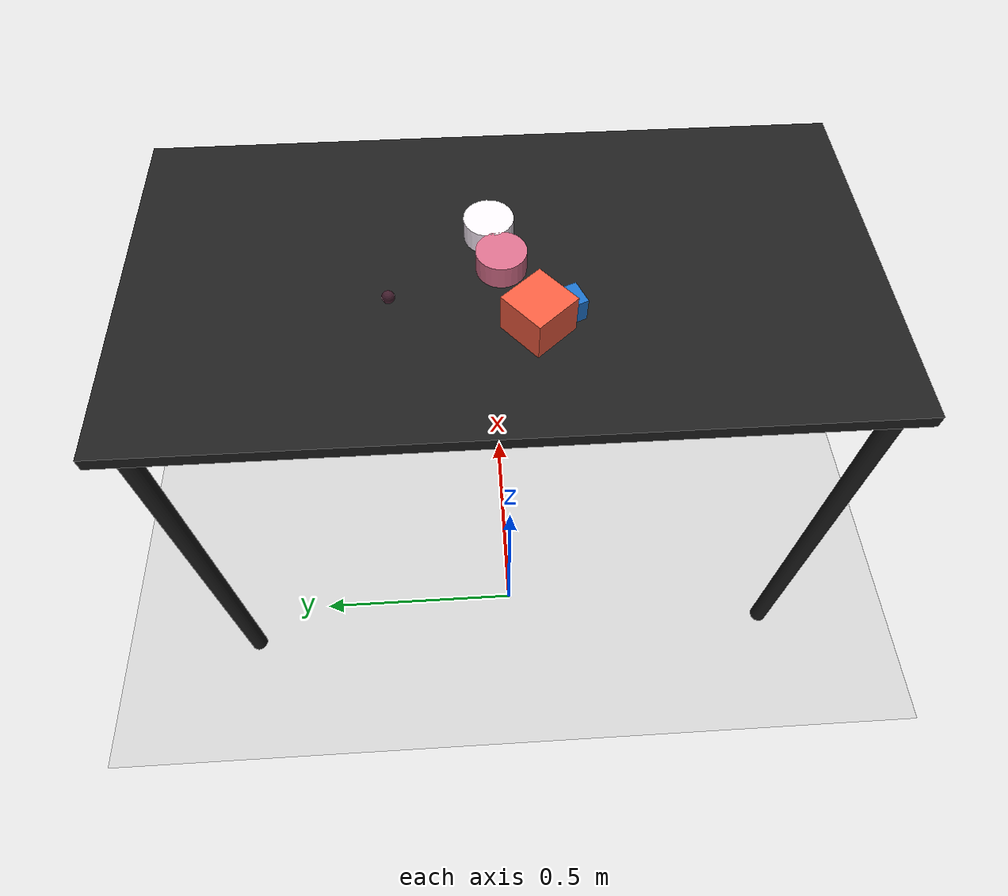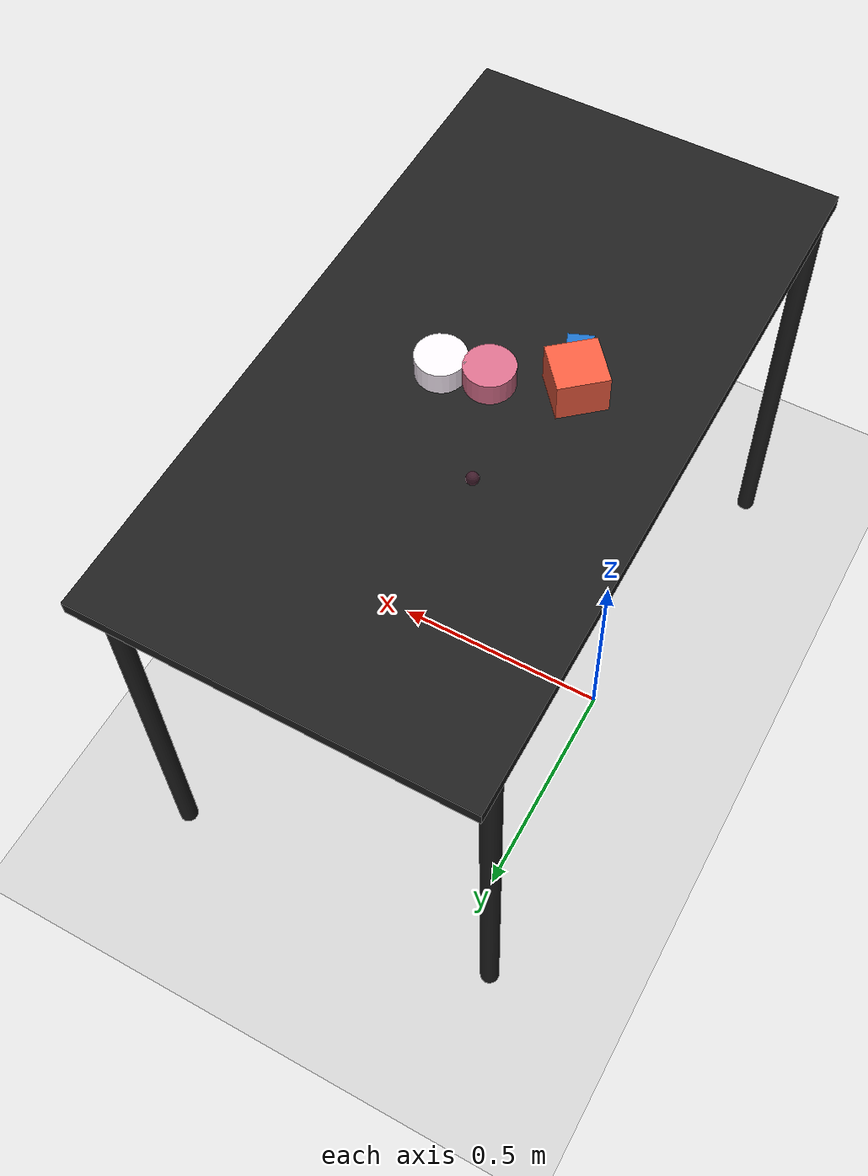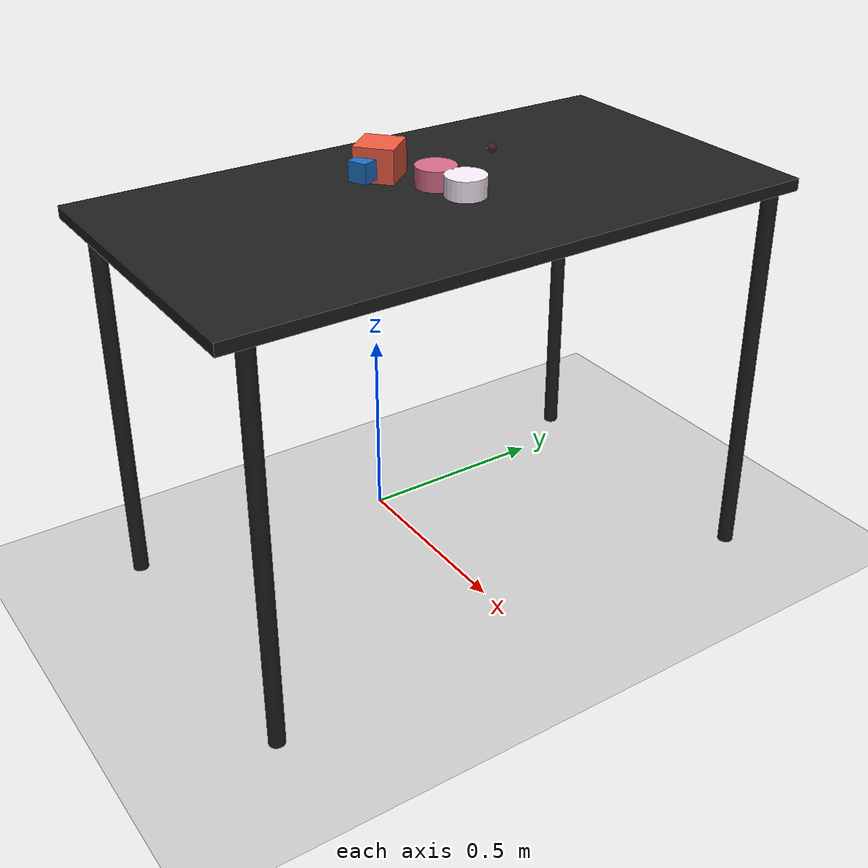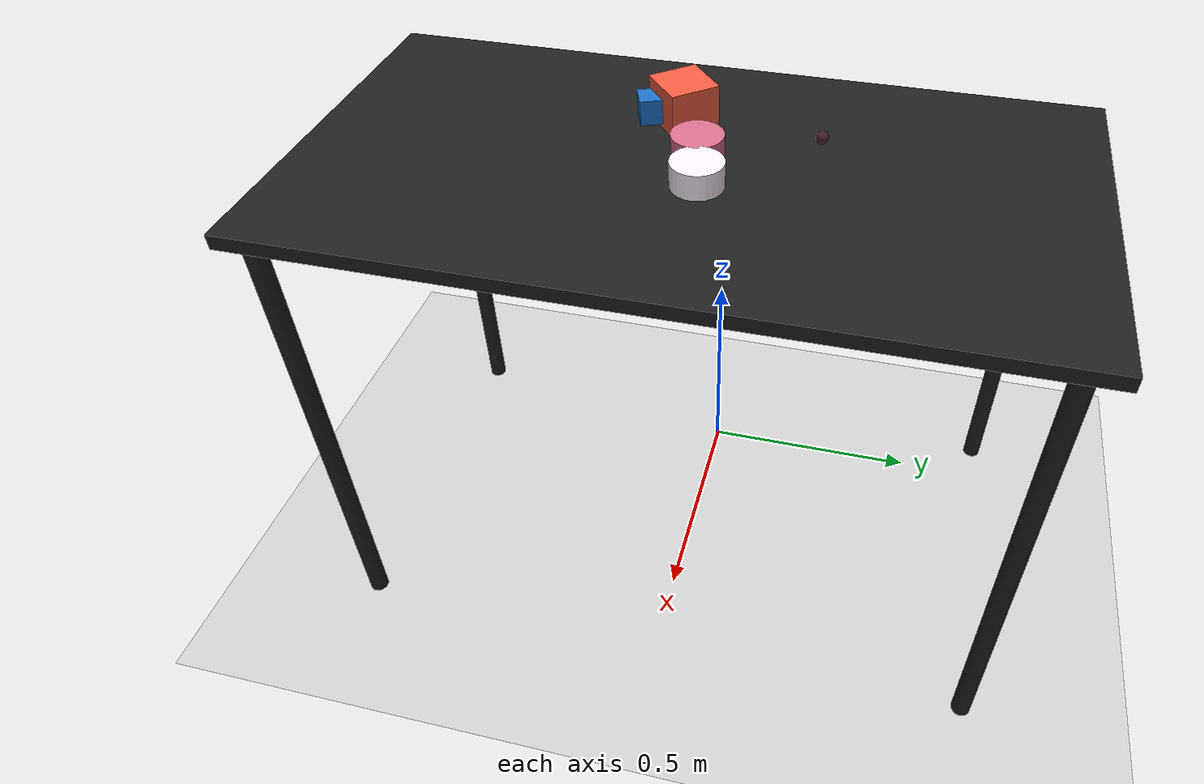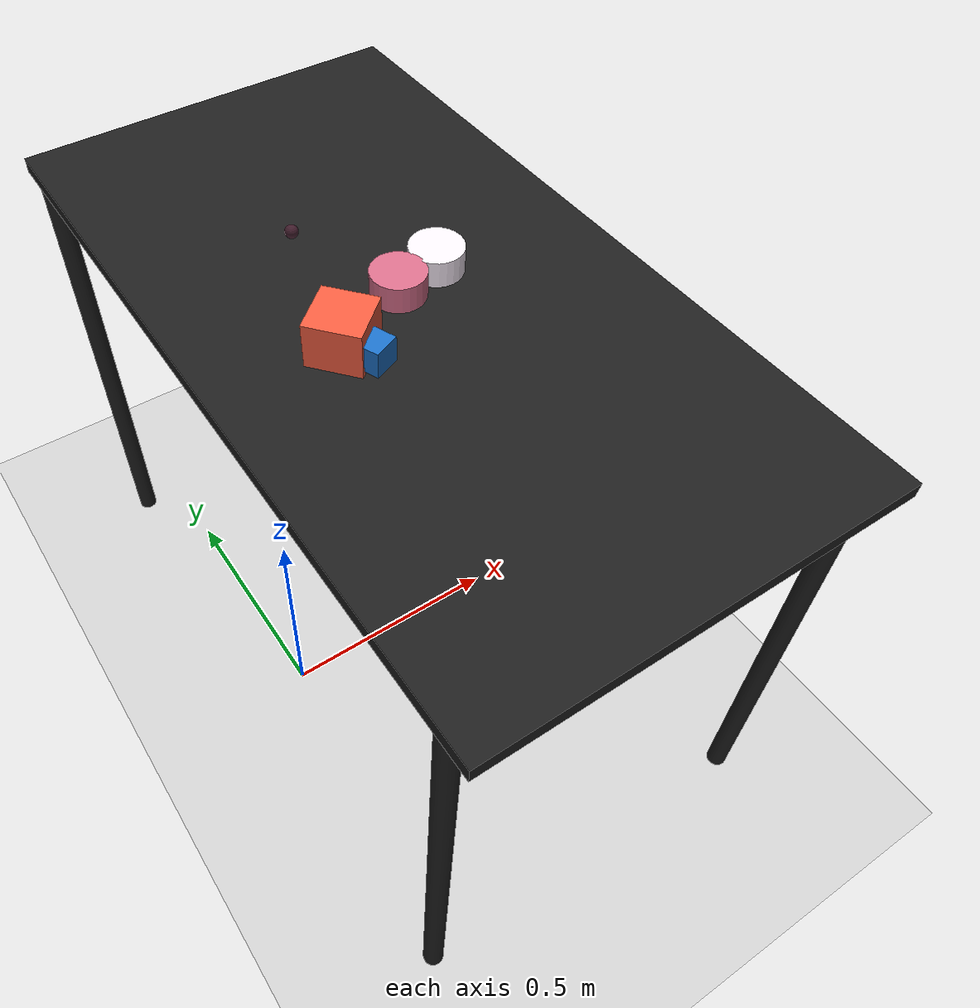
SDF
<?xml version="1.0" ?>
<sdf version="1.6">
  <world name="arm_world">
    <plugin filename="gz-sim-physics-system" name="gz::sim::systems::Physics">
      <engine>
        <filename>libgz-physics-bullet-featherstone-plugin.so</filename>
      </engine>
    </plugin>
    <plugin filename="gz-sim-user-commands-system" name="gz::sim::systems::UserCommands"/>
    <plugin filename="gz-sim-scene-broadcaster-system" name="gz::sim::systems::SceneBroadcaster"/>
    <plugin filename="gz-sim-sensors-system" name="gz::sim::systems::Sensors">
      <render_engine>ogre2</render_engine>
    </plugin>
    <gravity>0.0 0.0 -9.8</gravity>
    <scene>
      <shadows>false</shadows>
    </scene>
    <gui>
      <camera name="user_camera">
        <pose>0.75 -0.75 1.4 0 0.29 2.21</pose>
      </camera>
    </gui>
    <include>
      <uri>https://fuel.gazebosim.org/1.0/OpenRobotics/models/Sun</uri>
    </include>
    <model name="table">
      <static>true</static>
      <include>
        <uri>model://table</uri>
      </include>
      <pose>0.29 0 0 0 0 1.5708</pose>
    </model>
    <model name="ground_plane">
      <static>true</static>
      <link name="link">
        <collision name="collision">
          <geometry>
            <plane>
              <normal>0 0 1</normal>
            </plane>
          </geometry>
          <surface>
            <friction>
              <ode>
                <mu>1.0</mu>
                <mu2>1.0</mu2>
              </ode>
            </friction>
          </surface>
        </collision>
        <visual name="visual">
          <geometry>
            <plane>
              <normal>0 0 1</normal>
              <size>100 100</size>
            </plane>
          </geometry>
          <material>
            <ambient>0.8 0.8 0.8 1</ambient>
            <diffuse>0.8 0.8 0.8 1</diffuse>
            <specular>0.8 0.8 0.8 1</specular>
          </material>
        </visual>
      </link>
    </model>
    <model name="cube_l_0">
      <pose>0.132 -0.057 1.05 0 0 5.42</pose>
      <link name="cube_l_0_link">
        <inertial>
          <mass>0.05</mass>
          <inertia>
            <ixx>2.04e-7</ixx>
            <iyy>2.04e-7</iyy>
            <izz>3.9e-8</izz>
            <ixy>0</ixy>
            <ixz>0</ixz>
            <iyz>0</iyz>
          </inertia>
        </inertial>
        <collision name="cube_l_0_collision">
          <geometry>
            <box>
              <size>0.1 0.1 0.1</size>
            </box>
          </geometry>
          <surface>
            <friction>
              <ode>
                <mu>0.8</mu>
                <mu2>0.8</mu2>
                <fdir1>0 0 1</fdir1>
                <slip1>0.001</slip1>
                <slip2>0.001</slip2>
              </ode>
              <torsional>
                <coefficient>0.1</coefficient>
                <surface_radius>0.015</surface_radius>
                <use_patch_radius>true</use_patch_radius>
              </torsional>
            </friction>
            <contact>
              <ode>
                <kp>1e5</kp>
                <kd>10</kd>
                <max_vel>0.1</max_vel>
                <min_depth>0.001</min_depth>
                <soft_cfm>0.01</soft_cfm>
                <soft_erp>0.2</soft_erp>
              </ode>
            </contact>
            <bounce>
              <restitution_coefficient>0.2</restitution_coefficient>
              <threshold>0.01</threshold>
            </bounce>
          </surface>
        </collision>
        <visual name="cube_l_0_visual">
          <geometry>
            <box>
              <size>0.1 0.1 0.1</size>
            </box>
          </geometry>
          <material>
            <ambient>0.94 0.36 0.25 1</ambient>
            <diffuse>0.94 0.36 0.25 1</diffuse>
          </material>
        </visual>
        <velocity_decay>
          <linear>1</linear>
          <angular>1</angular>
        </velocity_decay>
      </link>
    </model>
    <model name="sphere_s_1">
      <pose>0.194 0.221 1.05 0 0 2.34</pose>
      <link name="sphere_s_1_link">
        <inertial>
          <mass>0.05</mass>
          <inertia>
            <ixx>2.04e-7</ixx>
            <iyy>2.04e-7</iyy>
            <izz>3.9e-8</izz>
            <ixy>0</ixy>
            <ixz>0</ixz>
            <iyz>0</iyz>
          </inertia>
        </inertial>
        <collision name="sphere_s_1_collision">
          <geometry>
            <sphere>
              <radius>0.0125</radius>
            </sphere>
          </geometry>
          <surface>
            <friction>
              <ode>
                <mu>0.8</mu>
                <mu2>0.8</mu2>
                <fdir1>0 0 1</fdir1>
                <slip1>0.001</slip1>
                <slip2>0.001</slip2>
              </ode>
              <torsional>
                <coefficient>0.1</coefficient>
                <surface_radius>0.015</surface_radius>
                <use_patch_radius>true</use_patch_radius>
              </torsional>
            </friction>
            <contact>
              <ode>
                <kp>1e5</kp>
                <kd>10</kd>
                <max_vel>0.1</max_vel>
                <min_depth>0.001</min_depth>
                <soft_cfm>0.01</soft_cfm>
                <soft_erp>0.2</soft_erp>
              </ode>
            </contact>
            <bounce>
              <restitution_coefficient>0.2</restitution_coefficient>
              <threshold>0.01</threshold>
            </bounce>
          </surface>
        </collision>
        <visual name="sphere_s_1_visual">
          <geometry>
            <sphere>
              <radius>0.0125</radius>
            </sphere>
          </geometry>
          <material>
            <ambient>0.25 0.11 0.17 1</ambient>
            <diffuse>0.25 0.11 0.17 1</diffuse>
          </material>
        </visual>
        <velocity_decay>
          <linear>1</linear>
          <angular>1</angular>
        </velocity_decay>
      </link>
    </model>
    <model name="cylinder_l_2">
      <pose>0.367 0.024 1.05 0 0 2.39</pose>
      <link name="cylinder_l_2_link">
        <inertial>
          <mass>0.05</mass>
          <inertia>
            <ixx>2.04e-7</ixx>
            <iyy>2.04e-7</iyy>
            <izz>3.9e-8</izz>
            <ixy>0</ixy>
            <ixz>0</ixz>
            <iyz>0</iyz>
          </inertia>
        </inertial>
        <collision name="cylinder_l_2_collision">
          <geometry>
            <cylinder>
              <radius>0.05</radius>
              <length>0.05</length>
            </cylinder>
          </geometry>
          <surface>
            <friction>
              <ode>
                <mu>0.8</mu>
                <mu2>0.8</mu2>
                <fdir1>0 0 1</fdir1>
                <slip1>0.001</slip1>
                <slip2>0.001</slip2>
              </ode>
              <torsional>
                <coefficient>0.1</coefficient>
                <surface_radius>0.015</surface_radius>
                <use_patch_radius>true</use_patch_radius>
              </torsional>
            </friction>
            <contact>
              <ode>
                <kp>1e5</kp>
                <kd>10</kd>
                <max_vel>0.1</max_vel>
                <min_depth>0.001</min_depth>
                <soft_cfm>0.01</soft_cfm>
                <soft_erp>0.2</soft_erp>
              </ode>
            </contact>
            <bounce>
              <restitution_coefficient>0.2</restitution_coefficient>
              <threshold>0.01</threshold>
            </bounce>
          </surface>
        </collision>
        <visual name="cylinder_l_2_visual">
          <geometry>
            <cylinder>
              <radius>0.05</radius>
              <length>0.05</length>
            </cylinder>
          </geometry>
          <material>
            <ambient>0.98 0.93 0.98 1</ambient>
            <diffuse>0.98 0.93 0.98 1</diffuse>
          </material>
        </visual>
        <velocity_decay>
          <linear>1</linear>
          <angular>1</angular>
        </velocity_decay>
      </link>
    </model>
    <model name="cube_m_3">
      <pose>0.155 -0.116 1.05 0 0 5.1</pose>
      <link name="cube_m_3_link">
        <inertial>
          <mass>0.05</mass>
          <inertia>
            <ixx>2.04e-7</ixx>
            <iyy>2.04e-7</iyy>
            <izz>3.9e-8</izz>
            <ixy>0</ixy>
            <ixz>0</ixz>
            <iyz>0</iyz>
          </inertia>
        </inertial>
        <collision name="cube_m_3_collision">
          <geometry>
            <box>
              <size>0.05 0.05 0.05</size>
            </box>
          </geometry>
          <surface>
            <friction>
              <ode>
                <mu>0.8</mu>
                <mu2>0.8</mu2>
                <fdir1>0 0 1</fdir1>
                <slip1>0.001</slip1>
                <slip2>0.001</slip2>
              </ode>
              <torsional>
                <coefficient>0.1</coefficient>
                <surface_radius>0.015</surface_radius>
                <use_patch_radius>true</use_patch_radius>
              </torsional>
            </friction>
            <contact>
              <ode>
                <kp>1e5</kp>
                <kd>10</kd>
                <max_vel>0.1</max_vel>
                <min_depth>0.001</min_depth>
                <soft_cfm>0.01</soft_cfm>
                <soft_erp>0.2</soft_erp>
              </ode>
            </contact>
            <bounce>
              <restitution_coefficient>0.2</restitution_coefficient>
              <threshold>0.01</threshold>
            </bounce>
          </surface>
        </collision>
        <visual name="cube_m_3_visual">
          <geometry>
            <box>
              <size>0.05 0.05 0.05</size>
            </box>
          </geometry>
          <material>
            <ambient>0.11 0.44 0.78 1</ambient>
            <diffuse>0.11 0.44 0.78 1</diffuse>
          </material>
        </visual>
        <velocity_decay>
          <linear>1</linear>
          <angular>1</angular>
        </velocity_decay>
      </link>
    </model>
    <model name="cylinder_l_4">
      <pose>0.277 0.004 1.05 0 0 5.06</pose>
      <link name="cylinder_l_4_link">
        <inertial>
          <mass>0.05</mass>
          <inertia>
            <ixx>2.04e-7</ixx>
            <iyy>2.04e-7</iyy>
            <izz>3.9e-8</izz>
            <ixy>0</ixy>
            <ixz>0</ixz>
            <iyz>0</iyz>
          </inertia>
        </inertial>
        <collision name="cylinder_l_4_collision">
          <geometry>
            <cylinder>
              <radius>0.05</radius>
              <length>0.05</length>
            </cylinder>
          </geometry>
          <surface>
            <friction>
              <ode>
                <mu>0.8</mu>
                <mu2>0.8</mu2>
                <fdir1>0 0 1</fdir1>
                <slip1>0.001</slip1>
                <slip2>0.001</slip2>
              </ode>
              <torsional>
                <coefficient>0.1</coefficient>
                <surface_radius>0.015</surface_radius>
                <use_patch_radius>true</use_patch_radius>
              </torsional>
            </friction>
            <contact>
              <ode>
                <kp>1e5</kp>
                <kd>10</kd>
                <max_vel>0.1</max_vel>
                <min_depth>0.001</min_depth>
                <soft_cfm>0.01</soft_cfm>
                <soft_erp>0.2</soft_erp>
              </ode>
            </contact>
            <bounce>
              <restitution_coefficient>0.2</restitution_coefficient>
              <threshold>0.01</threshold>
            </bounce>
          </surface>
        </collision>
        <visual name="cylinder_l_4_visual">
          <geometry>
            <cylinder>
              <radius>0.05</radius>
              <length>0.05</length>
            </cylinder>
          </geometry>
          <material>
            <ambient>0.84 0.43 0.54 1</ambient>
            <diffuse>0.84 0.43 0.54 1</diffuse>
          </material>
        </visual>
        <velocity_decay>
          <linear>1</linear>
          <angular>1</angular>
        </velocity_decay>
      </link>
    </model>
  </world>
</sdf>

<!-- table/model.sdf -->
<sdf version="1.5">
  <model name="table">
    <static>true</static>
    <link name="link">
      <collision name="surface">
        <pose>0 0 1.0 0 0 0</pose>
        <geometry>
          <box>
            <size>1.5 0.8 0.03</size>
          </box>
        </geometry>
        <surface>
          <friction>
            <ode>
              <mu>0.6</mu>
              <mu2>0.6</mu2>
            </ode>
          </friction>
        </surface>
      </collision>
      <visual name="surface">
        <pose>0 0 1.0 0 0 0</pose>
        <geometry>
          <box>
            <size>1.5 0.8 0.03</size>
          </box>
        </geometry>
        <material>
          <script>
            <uri>file://media/materials/scripts/gazebo.material</uri>
            <name>Gazebo/Black</name>
          </script>
        </material>
      </visual>
      <collision name="front_left_leg">
        <pose>0.68 0.38 0.5 0 0 0</pose>
        <geometry>
          <cylinder>
            <radius>0.02</radius>
            <length>1.0</length>
          </cylinder>
        </geometry>
      </collision>
      <visual name="front_left_leg">
        <pose>0.68 0.38 0.5 0 0 0</pose>
        <geometry>
          <cylinder>
            <radius>0.02</radius>
            <length>1.0</length>
          </cylinder>
        </geometry>
        <material>
          <script>
            <uri>file://media/materials/scripts/gazebo.material</uri>
            <name>Gazebo/Black</name>
          </script>
        </material>
      </visual>
      <collision name="front_right_leg">
        <pose>0.68 -0.38 0.5 0 0 0</pose>
        <geometry>
          <cylinder>
            <radius>0.02</radius>
            <length>1.0</length>
          </cylinder>
        </geometry>
      </collision>
      <visual name="front_right_leg">
        <pose>0.68 -0.38 0.5 0 0 0</pose>
        <geometry>
          <cylinder>
            <radius>0.02</radius>
            <length>1.0</length>
          </cylinder>
        </geometry>
        <material>
          <script>
            <uri>file://media/materials/scripts/gazebo.material</uri>
            <name>Gazebo/Black</name>
          </script>
        </material>
      </visual>
      <collision name="back_right_leg">
        <pose>-0.68 -0.38 0.5 0 0 0</pose>
        <geometry>
          <cylinder>
            <radius>0.02</radius>
            <length>1.0</length>
          </cylinder>
        </geometry>
      </collision>
      <visual name="back_right_leg">
        <pose>-0.68 -0.38 0.5 0 0 0</pose>
        <geometry>
          <cylinder>
            <radius>0.02</radius>
            <length>1.0</length>
          </cylinder>
        </geometry>
        <material>
          <script>
            <uri>file://media/materials/scripts/gazebo.material</uri>
            <name>Gazebo/Black</name>
          </script>
        </material>
      </visual>
      <collision name="back_left_leg">
        <pose>-0.68 0.38 0.5 0 0 0</pose>
        <geometry>
          <cylinder>
            <radius>0.02</radius>
            <length>1.0</length>
          </cylinder>
        </geometry>
      </collision>
      <visual name="back_left_leg">
        <pose>-0.68 0.38 0.5 0 0 0</pose>
        <geometry>
          <cylinder>
            <radius>0.02</radius>
            <length>1.0</length>
          </cylinder>
        </geometry>
        <material>
          <script>
            <uri>file://media/materials/scripts/gazebo.material</uri>
            <name>Gazebo/Black</name>
          </script>
        </material>
      </visual>
    </link>
  </model>
</sdf>
